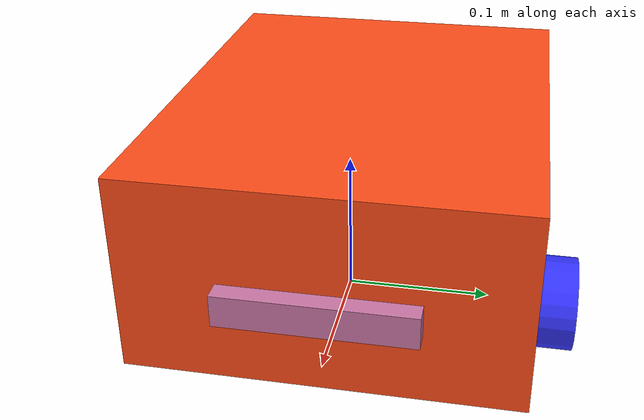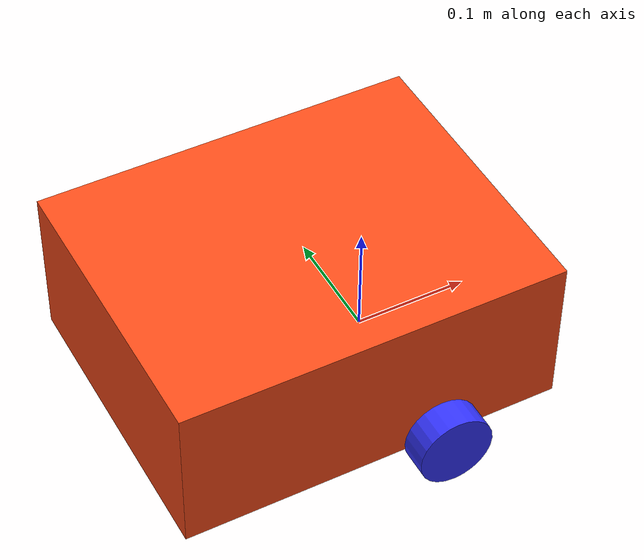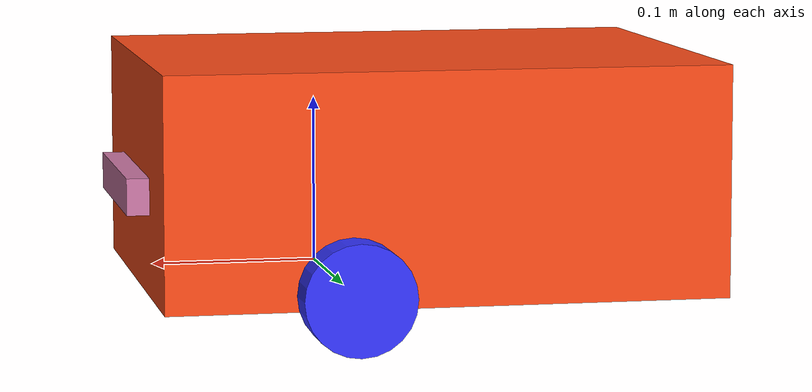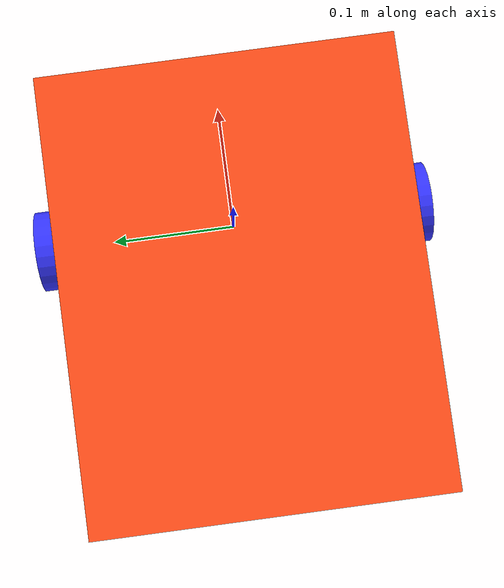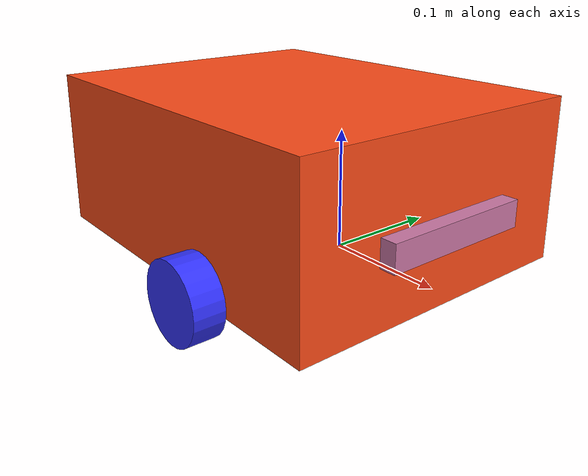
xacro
<?xml version="1.0"?>
<robot xmlns:xacro="http://www.ros.org/wiki/xacro"  name="robot">

    <xacro:include filename="robot_core.xacro" />
    <xacro:include filename="gazebo_control.xacro" />
    <xacro:include filename="lidar.xacro" />
</robot>

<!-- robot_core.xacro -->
<robot xmlns:xacro="http://www.ros.org/wiki/xacro" >

    <xacro:include filename="inertial1_macros.xacro"/>

    <xacro:property name="chassis_length" value="0.335"/>
    <xacro:property name="chassis_width" value="0.265"/>
    <xacro:property name="chassis_height" value="0.138"/>
    <xacro:property name="chassis_mass" value="1.0"/>
    <xacro:property name="wheel_radius" value="0.033"/>
    <xacro:property name="wheel_thickness" value="0.026"/>
    <xacro:property name="wheel_mass" value="0.05"/>
    <xacro:property name="wheel_offset_x" value="0.226"/>
    <xacro:property name="wheel_offset_y" value="0.1485"/>
    <xacro:property name="wheel_offset_z" value="0.01"/>
    <xacro:property name="caster_wheel_radius" value="0.01"/>
    <xacro:property name="caster_wheel_mass" value="0.01"/>
    <xacro:property name="caster_wheel_offset_x" value="0.075"/>
    <xacro:property name="caster_wheel_offset_z" value="${wheel_offset_z - wheel_radius + caster_wheel_radius}"/>

    <material name="white">
        <color rgba="1 1 1 1" />
    </material>

    <material name="orange">
        <color rgba="1 0.3 0.1 1"/>
    </material>

    <material name="blue">
        <color rgba="0.2 0.2 1 1"/>
    </material>

    <material name="black">
        <color rgba="0 0 0 1"/>
    </material>

    <material name="red">
        <color rgba="1 0 0 1"/>
    </material>

    <!-- BASE LINK -->

    <link name="base_link">

    </link>

    <!-- BASE_FOOTPRINT LINK -->

    <joint name="base_footprint_joint" type="fixed">
        <parent link="base_link"/>
        <child link="base_footprint"/>
        <origin xyz="0 0 0" rpy="0 0 0"/>
    </joint>

    <link name="base_footprint">
    </link>

    <!-- CHASSIS LINK -->

    <joint name="chassis_joint" type="fixed">
        <parent link="base_link"/>
        <child link="chassis"/>
        <origin xyz="${-wheel_offset_x} 0 ${-wheel_offset_z}"/>
    </joint>

    <link name="chassis">
        <visual>
            <origin xyz="${chassis_length/2} 0 ${chassis_height/2}"/>
            <geometry>
                <box size="${chassis_length} ${chassis_width} ${chassis_height}"/>
            </geometry>
            <material name="orange"/>
        </visual>
        <collision>
            <origin xyz="${chassis_length/2} 0 ${chassis_height/2}"/>
            <geometry>
                <box size="${chassis_length} ${chassis_width} ${chassis_height}"/>
            </geometry>
        </collision>
        <xacro:inertial_box mass="0.5" x="${chassis_length}" y="${chassis_width}" z="${chassis_height}">
            <origin xyz="${chassis_length/2} 0 ${chassis_height/2}" rpy="0 0 0"/>
        </xacro:inertial_box>
    </link>

    <gazebo reference="chassis">
        <material>Gazebo/Orange</material>
    </gazebo>

    <!-- LEFT WHEEL LINK -->

    <joint name="left_wheel_joint" type="continuous">
        <parent link="base_link"/>
        <child link="left_wheel"/>
        <origin xyz="0 ${wheel_offset_y} 0" rpy="-${pi/2} 0 0" />
        <axis xyz="0 0 1"/>
    </joint>

    <link name="left_wheel">
        <visual>
            <geometry>
                <cylinder radius="${wheel_radius}" length="${wheel_thickness}"/>
            </geometry>
            <material name="blue"/>
        </visual>
        <collision>
            <geometry>
                <sphere radius="${wheel_radius}"/>
            </geometry>
        </collision>
        <xacro:inertial_cylinder mass="${wheel_mass}" length="${wheel_thickness}" radius="${wheel_radius}">
            <origin xyz="0 0 0" rpy="0 0 0"/>
        </xacro:inertial_cylinder>
    </link>

    <gazebo reference="left_wheel">
        <material>Gazebo/Blue</material>
    </gazebo>

    <!-- RIGHT WHEEL LINK -->

    <joint name="right_wheel_joint" type="continuous">
        <parent link="base_link"/>
        <child link="right_wheel"/>
        <origin xyz="0 ${-wheel_offset_y} 0" rpy="${pi/2} 0 0" />
        <axis xyz="0 0 -1"/>
    </joint>

    <link name="right_wheel">
        <visual>
            <geometry>
                <cylinder radius="${wheel_radius}" length="${wheel_thickness}"/>
            </geometry>
            <material name="blue"/>
        </visual>
        <collision>
            <geometry>
                <sphere radius="${wheel_radius}"/>
            </geometry>
        </collision>
        <xacro:inertial_cylinder mass="${wheel_mass}" length="${wheel_thickness}" radius="${wheel_radius}">
            <origin xyz="0 0 0" rpy="0 0 0"/>
        </xacro:inertial_cylinder>
    </link>

    <gazebo reference="right_wheel">
        <material>Gazebo/Blue</material>
    </gazebo>

    <!-- CASTER WHEEL LINK -->

    <joint name="caster_wheel_joint" type="fixed">
        <parent link="chassis"/>
        <child link="caster_wheel"/>
        <origin xyz="${caster_wheel_offset_x} 0 ${caster_wheel_offset_z}"/>
    </joint>

    <link name="caster_wheel">
        <visual>
            <geometry>
                <sphere radius="${caster_wheel_radius}"/>
            </geometry>
            <material name="white"/>
        </visual>
        <collision>
            <geometry>
                <sphere radius="${caster_wheel_radius}"/>
            </geometry>
        </collision>
        <xacro:inertial_sphere mass="${caster_wheel_mass}" radius="${caster_wheel_radius}">
            <origin xyz="0 0 0" rpy="0 0 0"/>
        </xacro:inertial_sphere>
    </link>

    <gazebo reference="caster_wheel">
        <material>Gazebo/White</material>
        <mu1 value="0.001"/>
        <mu2 value="0.001"/>
    </gazebo>

</robot>

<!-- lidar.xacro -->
<robot xmlns:xacro="http://www.ros.org/wiki/xacro" >
	<link name="camera_link">
	<visual>
		<origin xyz="0 0 0" rpy="0 0 0"/>
		<geometry>
		<box size="0.015 0.130 0.022"/>
		</geometry>
	</visual>

	<collision>
		<origin xyz="0 0 0" rpy="0 0 0"/>
		<geometry>
		<box size="0.015 0.130 0.022"/>
		</geometry>
	</collision>

	<inertial>
		<origin xyz="0 0 0" rpy="0 0 0"/>
		<mass value="0.035"/>
		<inertia ixx="0.001"  ixy="0"  ixz="0" iyy="0.001" iyz="0" izz="0.001" />
	</inertial>
	</link>

	<joint name="camera_joint" type="fixed">
	<parent link="base_link"/>
	<child link="camera_link"/>
	<origin xyz="0.115 0 0.05" rpy="0 0 0"/>
	</joint>

	<link name="camera_depth_frame"/>

	<joint name="camera_depth_joint" type="fixed">
	<origin xyz="0 0 0" rpy="${-pi/2} 0 ${-pi/2}"/>
	<parent link="camera_link"/>
	<child link="camera_depth_frame"/>
	</joint>

	<gazebo reference="camera_link">
	<sensor name="depth_camera" type="depth">
		<visualize>true</visualize>
		<update_rate>30.0</update_rate>
		<camera name="camera">
		<horizontal_fov>1.047198</horizontal_fov>
		<image>
			<width>640</width>
			<height>480</height>
			<format>R8G8B8</format>
		</image>
		<clip>
			<near>0.02</near>
			<far>10</far>
		</clip>
		</camera>
		<noise>
        <type>gaussian</type>
        <!-- Noise is sampled independently per pixel on each frame.
             That pixel's noise value is added to each of its color
              channels, which at that point lie in the range [0,1]. -->
        <mean>0.0</mean>
        <stddev>0.007</stddev>
     	</noise>
		<plugin name="depth_camera_controller" filename="libgazebo_ros_camera.so">
		<camera_name>depth_camera</camera_name>
    	<frame_name>camera_depth_frame</frame_name>
    	<hack_baseline>0</hack_baseline>
      	<min_depth>0.001</min_depth>
		</plugin>
	</sensor>
	</gazebo>

</robot>
